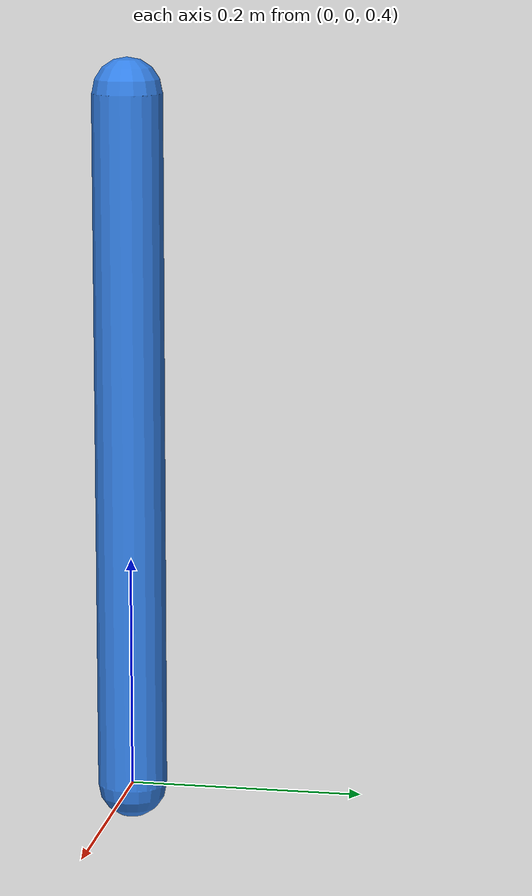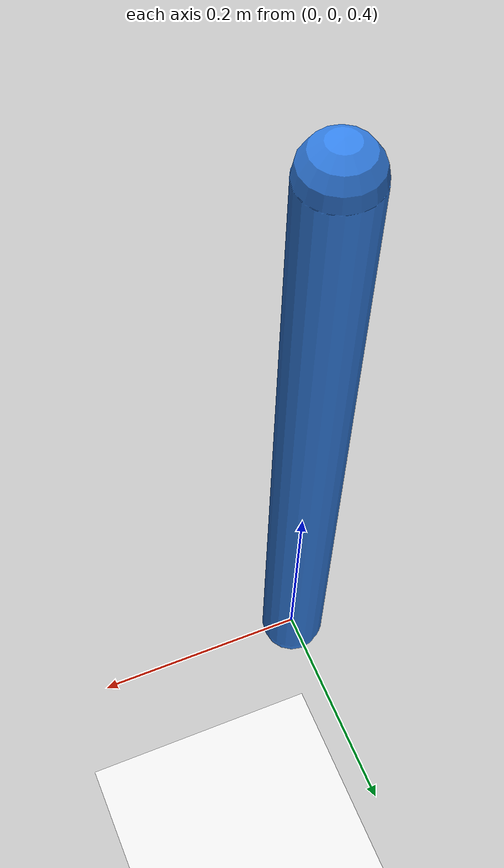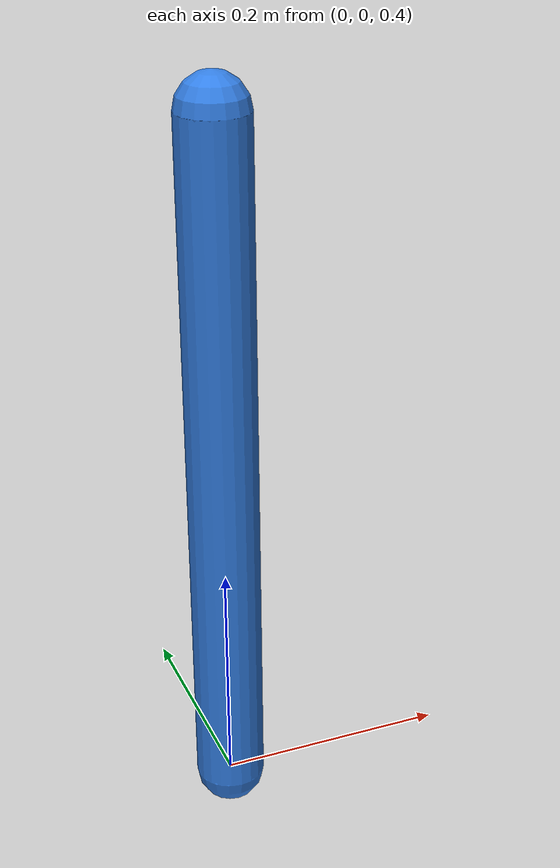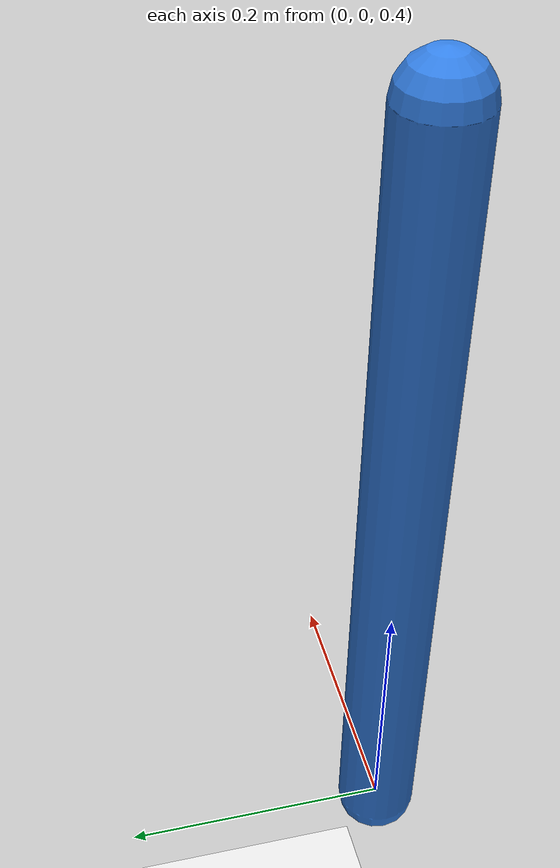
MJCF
<mujoco model="pendulum">
  <!-- Your own MJCF goes here. Load it with load_xml("scenes/pendulum.xml"). -->
  <option timestep="0.002" gravity="0 0 -9.81"/>
  <worldbody>
    <light pos="0 0 3" dir="0 0 -1"/>
    <geom type="plane" size="2 2 .1" rgba=".9 .9 .9 1"/>
    <body name="pole" pos="0 0 1">
      <joint name="hinge" type="hinge" axis="0 1 0" damping="0.05"/>
      <geom type="capsule" fromto="0 0 0 0 0 -0.6" size="0.03" rgba=".2 .5 .9 1" mass="0.5"/>
    </body>
  </worldbody>
  <actuator>
    <motor joint="hinge" gear="1" ctrlrange="-2 2"/>
  </actuator>
  <keyframe>
    <key name="tilted" qpos="0.8"/>
  </keyframe>
</mujoco>
